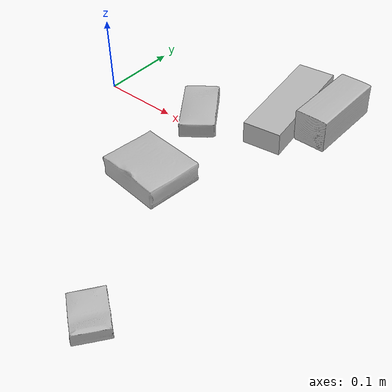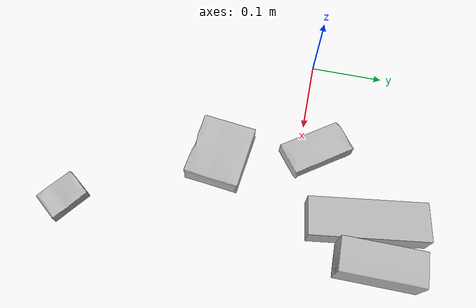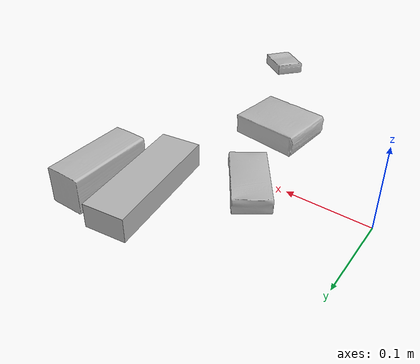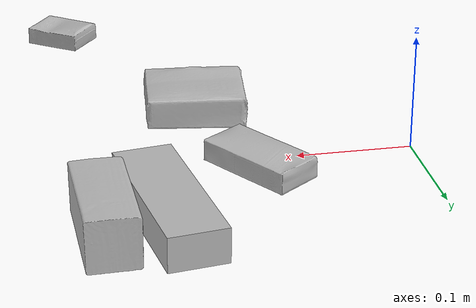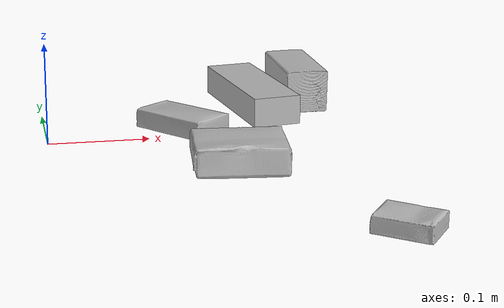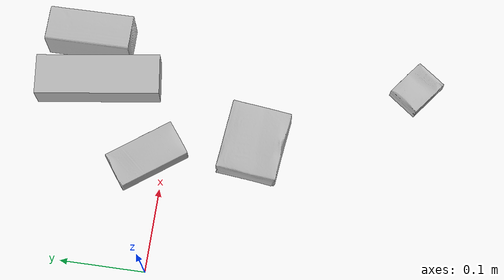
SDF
<sdf version="1.4">
  <world name="default">
    <light name="light1" type="point">
      <pose>0 0 1 0 0 0</pose>
      <diffuse>3 3 3 1</diffuse>
      <specular>3 3 3 1</specular>
    </light>
    <light name="light2" type="point">
      <pose>0 0.5 2 0 0 0</pose>
      <diffuse>1 1 1 1</diffuse>
      <specular>1 1 1 1</specular>
    </light>
    <light name="light3" type="point">
      <pose>0 0.5 2 0 0 0</pose>
      <diffuse>3 3 3 1</diffuse>
      <specular>3 3 3 1</specular>
    </light>
    <scene>
      <ambient>0.7 0.7 0.7</ambient>
    </scene>
    <model name="box1">
      <link name="link_box1">
        <collision name="default">
          <geometry>
            <mesh>
              <uri>model://sugar_box/collision_meshes/collision.obj</uri>
              <scale>0.5 0.5 0.5</scale>
            </mesh>
          </geometry>
          <surface>
            <friction>
              <ode>
                <mu>0.5</mu>
                <mu2>0.5</mu2>
              </ode>
            </friction>
          <contact>
        <ode>
            <max_vel>0</max_vel>
            <min_depth>0.0001</min_depth>
            <kp>1e8</kp>
        </ode>
    </contact></surface>
        </collision>
        <visual name="default">
          <geometry>
            <mesh>
              <uri>model://sugar_box/visual_meshes/visual.dae</uri>
              <scale>0.5 0.5 0.5</scale>
            </mesh>
          </geometry>
        </visual>
        <inertial>
          <mass>0.07249404489994049</mass>
          <pose>0.0005171863012947142 1.924554817378521e-05 -0.00018182402709499002 -0.00040462618385709627 0.0010506635220579009 0.0026153790218148127</pose>
          <inertia>
            <ixx>1.5100456e-05</ixx>
            <iyy>4.8807786e-05</iyy>
            <izz>5.842874e-05</izz>
            <ixy>0</ixy>
            <ixz>0</ixz>
            <iyz>0</iyz>
          </inertia>
        </inertial>
      </link>
      <pose>0.13642826676368713 0.020589390769600868 0.011399302631616592 0.0007757758531241215 -0.023432735096477097 -0.9473431431785588</pose>
    </model>
    <model name="box2">
      <link name="link_box2">
        <collision name="default">
          <geometry>
            <mesh>
              <uri>model://cracker_box/collision_meshes/collision.obj</uri>
              <scale>0.25 0.25 0.25</scale>
            </mesh>
          </geometry>
          <surface>
            <friction>
              <ode>
                <mu>0.5</mu>
                <mu2>0.5</mu2>
              </ode>
            </friction>
          <contact>
        <ode>
            <max_vel>0</max_vel>
            <min_depth>0.0001</min_depth>
            <kp>1e8</kp>
        </ode>
    </contact></surface>
        </collision>
        <visual name="default">
          <geometry>
            <mesh>
              <uri>model://cracker_box/visual_meshes/visual.dae</uri>
              <scale>0.25 0.25 0.25</scale>
            </mesh>
          </geometry>
        </visual>
        <inertial>
          <mass>0.019660919904708862</mass>
          <pose>0.00023660410079173744 6.358561222441494e-05 -0.0004257383698131889 -0.00031620756431779875 -0.011106489600602764 0.0025467940703044144</pose>
          <inertia>
            <ixx>3.125538e-06</ixx>
            <iyy>5.1608768e-06</iyy>
            <izz>7.365045e-06</izz>
            <ixy>0</ixy>
            <ixz>0</ixz>
            <iyz>0</iyz>
          </inertia>
        </inertial>
      </link>
      <pose>0.2666724920272827 -0.29112738370895386 0.00909603014588356 -0.014050452000255302 -0.005016837701280493 2.483422910735425</pose>
    </model>
    <model name="box3">
      <link name="link_box3">
        <collision name="default">
          <geometry>
            <mesh>
              <uri>model://wood_block/collision_meshes/collision.obj</uri>
              <scale>0.5 0.5 0.5</scale>
            </mesh>
          </geometry>
          <surface>
            <friction>
              <ode>
                <mu>0.5</mu>
                <mu2>0.5</mu2>
              </ode>
            </friction>
          <contact>
        <ode>
            <max_vel>0</max_vel>
            <min_depth>0.0001</min_depth>
            <kp>1e8</kp>
        </ode>
    </contact></surface>
        </collision>
        <visual name="default">
          <geometry>
            <mesh>
              <uri>model://wood_block/visual_meshes/visual.dae</uri>
              <scale>0.5 0.5 0.5</scale>
            </mesh>
          </geometry>
        </visual>
        <inertial>
          <mass>0.22331082820892334</mass>
          <pose>-2.9066577553749084e-06 -0.000285404734313488 0.00013204292918089777 -0.0522110088927385 -0.005192696049127085 -0.006861379582621758</pose>
          <inertia>
            <ixx>7.470592e-05</ixx>
            <iyy>0.00023599603</iyy>
            <izz>0.0002351133</izz>
            <ixy>0</ixy>
            <ixz>0</ixz>
            <iyz>0</iyz>
          </inertia>
        </inertial>
      </link>
      <pose>0.27796098589897156 0.11258511990308762 0.022629262879490852 -0.005208497717258963 0.005718744435295398 -1.5661055108238253</pose>
    </model>
    <model name="box4">
      <link name="link_box4">
        <collision name="default">
          <geometry>
            <mesh>
              <uri>model://jenga/collision_meshes/collision.obj</uri>
              <scale>1.0 1.0 1.0</scale>
            </mesh>
          </geometry>
          <surface>
            <friction>
              <ode>
                <mu>0.5</mu>
                <mu2>0.5</mu2>
              </ode>
            </friction>
          <contact>
        <ode>
            <max_vel>0</max_vel>
            <min_depth>0.0001</min_depth>
            <kp>1e8</kp>
        </ode>
    </contact></surface>
        </collision>
        <visual name="default">
          <geometry>
            <mesh>
              <uri>model://jenga/visual_meshes/visual.dae</uri>
              <scale>1.0 1.0 1.0</scale>
            </mesh>
          </geometry>
        </visual>
        <inertial>
          <mass>0.1217927634716034</mass>
          <pose>-2.502855807051674e-07 -0.00010250010382151231 -4.0923401684267446e-05 0.0 -7.34215461761844e-07 0.0</pose>
          <inertia>
            <ixx>3.370301e-05</ixx>
            <iyy>0.00022837071</iyy>
            <izz>0.00024380515</izz>
            <ixy>0</ixy>
            <ixz>0</ixz>
            <iyz>0</iyz>
          </inertia>
        </inertial>
      </link>
      <pose>0.22504985332489014 0.09490484744310379 0.014999995008111 4.2406232163968695e-08 6.391264586598314e-09 1.7078596240020951</pose>
    </model>
    <model name="box5">
      <link name="link_box5">
        <collision name="default">
          <geometry>
            <mesh>
              <uri>model://gelatin_box/collision_meshes/collision.obj</uri>
              <scale>1.0 1.0 1.0</scale>
            </mesh>
          </geometry>
          <surface>
            <friction>
              <ode>
                <mu>0.5</mu>
                <mu2>0.5</mu2>
              </ode>
            </friction>
          <contact>
        <ode>
            <max_vel>0</max_vel>
            <min_depth>0.0001</min_depth>
            <kp>1e8</kp>
        </ode>
    </contact></surface>
        </collision>
        <visual name="default">
          <geometry>
            <mesh>
              <uri>model://gelatin_box/visual_meshes/visual.dae</uri>
              <scale>1.0 1.0 1.0</scale>
            </mesh>
          </geometry>
        </visual>
        <inertial>
          <mass>0.09479870647192001</mass>
          <pose>0.0004319618456065655 0.00011156871914863586 -0.0003640321083366871 -0.0010503720924044775 -0.0047558191559584585 0.01644055760930107</pose>
          <inertia>
            <ixx>6.6920154e-05</ixx>
            <iyy>4.780071e-05</iyy>
            <izz>0.00010186739</izz>
            <ixy>0</ixy>
            <ixz>0</ixz>
            <iyz>0</iyz>
          </inertia>
        </inertial>
      </link>
      <pose>0.16875790059566498 -0.103473961353302 0.015168312005698681 0.005596358611114917 -0.007303366329894543 -1.6949568568930604</pose>
    </model>
  <physics type="ode">
      <max_contacts>50</max_contacts>
      <ode>
        <solver>
          <type>quick</type>
          <iters>75</iters>
        </solver>
        <constraints>
          <contact_max_correcting_vel>0</contact_max_correcting_vel>
          <contact_surface_layer>0</contact_surface_layer>
        </constraints>
      </ode>
    </physics></world>
</sdf>
